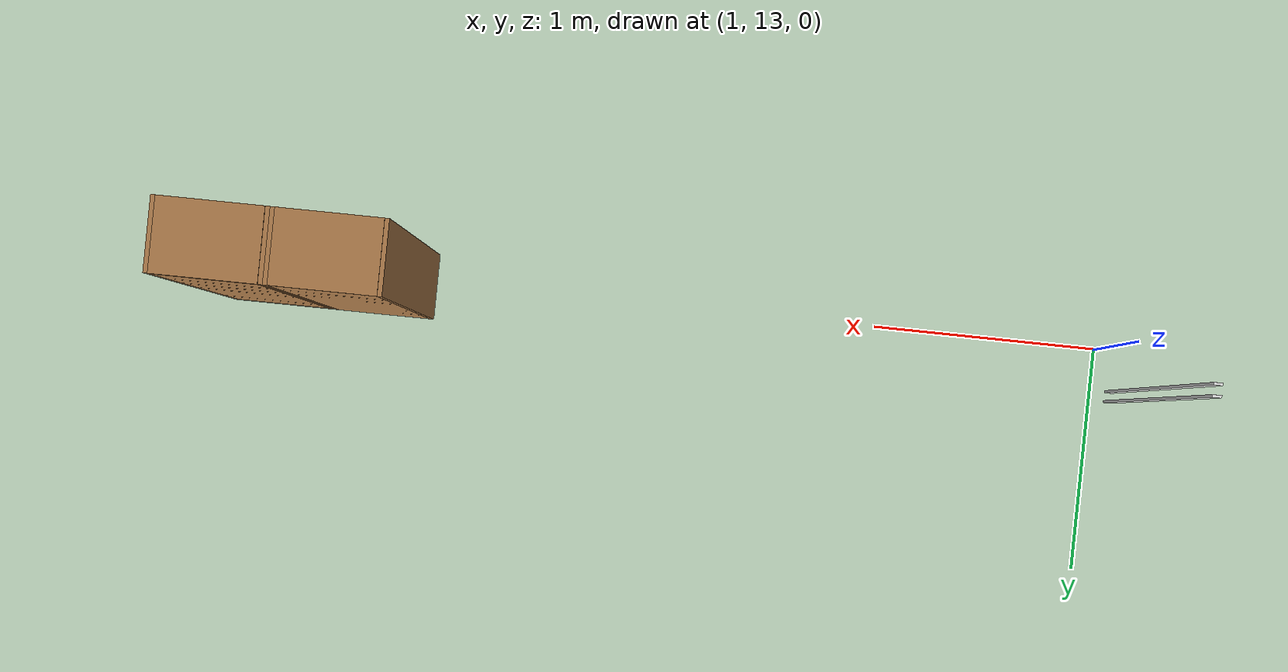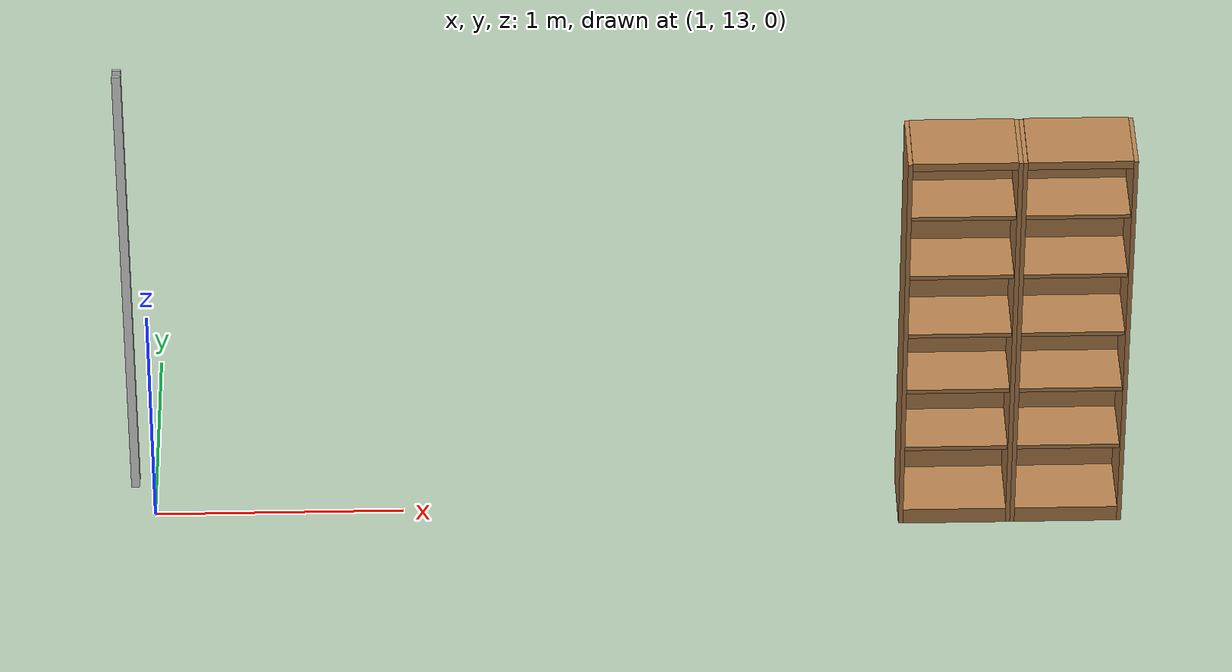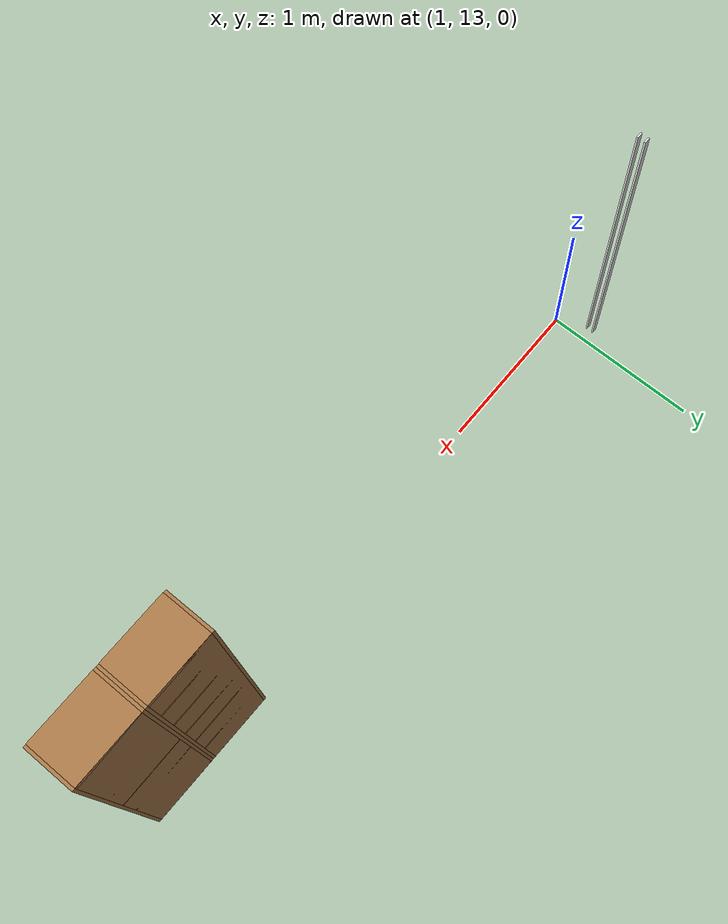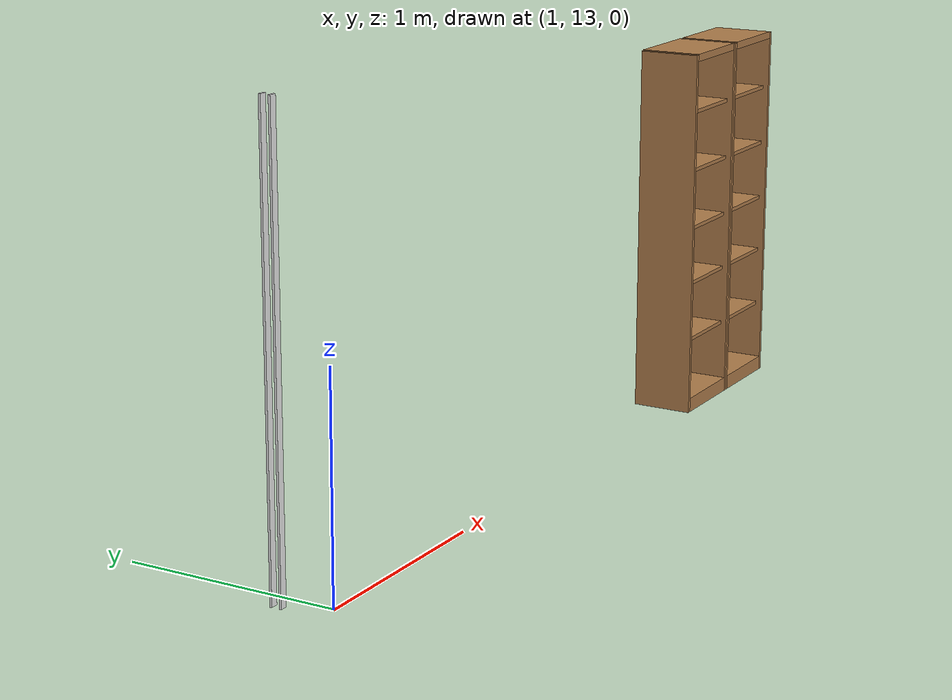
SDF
<sdf version="1.6">
 <world name="apartment">
  <model name="door_stopper_x02y16">
   <link name="door_frame">
    <visual name="stopper">
     <pose>0.0225 0.0175 1.025 0 -0 0</pose>
     <geometry><box><size>0.01 0.035 2.05</size></box></geometry>
     <material>
      <script><uri>model://base_materials/color/scripts</uri><name>hsr_color/white</name></script>
     </material>
    </visual>
    <collision name="collision_frame_1">
     <pose>0.0225 0.0175 1.025 0 -0 0</pose>
     <geometry><box><size>0.01 0.035 2.05</size></box></geometry>
    </collision>
    <visual name="frame_2">
     <pose>-0.0225 0.0175 1.025 0 -0 0</pose>
     <geometry><box><size>0.01 0.035 2.05</size></box></geometry>
     <material>
      <script><uri>model://base_materials/color/scripts</uri><name>hsr_color/white</name></script>
     </material>
    </visual>
    <collision name="collision_frame_2">
     <pose>-0.0225 0.0175 1.025 0 -0 0</pose>
     <geometry><box><size>0.01 0.035 2.05</size></box></geometry>
    </collision>
   </link>
   <static>1</static>
   <pose>0.93 13.2075 0 0 -0 1.5708</pose>
  </model>
  <model name="high_shelf01">
   <link name="link">
    <inertial>
     <mass>5</mass>
     <inertia><ixx>1</ixx><ixy>0</ixy><ixz>0</ixz><iyy>1</iyy><iyz>0</iyz><izz>1</izz></inertia>
    </inertial>
    <visual name="left_board">
     <pose>-0.1475 0.009 0.898 0 -0 0</pose>
     <geometry><box><size>0.295 0.018 1.796</size></box></geometry>
     <material>
      <script>
       <uri>model://base_materials/wood/scripts</uri>
       <uri>model://base_materials/wood/textures</uri>
       <name>base_materials/light_wood</name>
      </script>
     </material>
    </visual>
    <collision name="collision_left_board">
     <pose>-0.1475 0.009 0.898 0 -0 0</pose>
     <geometry><box><size>0.295 0.018 1.796</size></box></geometry>
    </collision>
    <visual name="right_board">
     <pose>-0.1475 0.441 0.898 0 -0 0</pose>
     <geometry><box><size>0.295 0.018 1.796</size></box></geometry>
     <material>
      <script>
       <uri>model://base_materials/wood/scripts</uri>
       <uri>model://base_materials/wood/textures</uri>
       <name>base_materials/light_wood</name>
      </script>
     </material>
    </visual>
    <collision name="collision_right_board">
     <pose>-0.1475 0.441 0.898 0 -0 0</pose>
     <geometry><box><size>0.295 0.018 1.796</size></box></geometry>
    </collision>
    <visual name="top_board">
     <pose>-0.1475 0.225 1.7825 0 -0 0</pose>
     <geometry><box><size>0.295 0.414 0.035</size></box></geometry>
     <material>
      <script>
       <uri>model://base_materials/wood/scripts</uri>
       <uri>model://base_materials/wood/textures</uri>
       <name>base_materials/light_wood</name>
      </script>
     </material>
    </visual>
    <collision name="collision_top_board">
     <pose>-0.1475 0.225 1.7825 0 -0 0</pose>
     <geometry><box><size>0.295 0.414 0.035</size></box></geometry>
    </collision>
    <visual name="1st_shelf">
     <pose>-0.162 0.225 1.51 0 -0 0</pose>
     <geometry><box><size>0.266 0.414 0.018</size></box></geometry>
     <material>
      <script>
       <uri>model://base_materials/wood/scripts</uri>
       <uri>model://base_materials/wood/textures</uri>
       <name>base_materials/light_wood</name>
      </script>
     </material>
    </visual>
    <collision name="collision_1st_shelf">
     <pose>-0.162 0.225 1.51 0 -0 0</pose>
     <geometry><box><size>0.266 0.414 0.018</size></box></geometry>
    </collision>
    <visual name="2nd_shelf">
     <pose>-0.162 0.225 1.22 0 -0 0</pose>
     <geometry><box><size>0.266 0.414 0.018</size></box></geometry>
     <material>
      <script>
       <uri>model://base_materials/wood/scripts</uri>
       <uri>model://base_materials/wood/textures</uri>
       <name>base_materials/light_wood</name>
      </script>
     </material>
    </visual>
    <collision name="collision_2nd_shelf">
     <pose>-0.162 0.225 1.22 0 -0 0</pose>
     <geometry><box><size>0.266 0.414 0.018</size></box></geometry>
    </collision>
    <visual name="3rd_shelf">
     <pose>-0.162 0.225 0.93 0 -0 0</pose>
     <geometry><box><size>0.266 0.414 0.018</size></box></geometry>
     <material>
      <script>
       <uri>model://base_materials/wood/scripts</uri>
       <uri>model://base_materials/wood/textures</uri>
       <name>base_materials/light_wood</name>
      </script>
     </material>
    </visual>
    <collision name="collision_3rd_shelf">
     <pose>-0.162 0.225 0.93 0 -0 0</pose>
     <geometry><box><size>0.266 0.414 0.018</size></box></geometry>
    </collision>
    <visual name="4th_shelf">
     <pose>-0.162 0.225 0.65 0 -0 0</pose>
     <geometry><box><size>0.266 0.414 0.018</size></box></geometry>
     <material>
      <script>
       <uri>model://base_materials/wood/scripts</uri>
       <uri>model://base_materials/wood/textures</uri>
       <name>base_materials/light_wood</name>
      </script>
     </material>
    </visual>
    <collision name="collision_4th_shelf">
     <pose>-0.162 0.225 0.65 0 -0 0</pose>
     <geometry><box><size>0.266 0.414 0.018</size></box></geometry>
    </collision>
    <visual name="5th_shelf">
     <pose>-0.162 0.225 0.36 0 -0 0</pose>
     <geometry><box><size>0.266 0.414 0.018</size></box></geometry>
     <material>
      <script>
       <uri>model://base_materials/wood/scripts</uri>
       <uri>model://base_materials/wood/textures</uri>
       <name>base_materials/light_wood</name>
      </script>
     </material>
    </visual>
    <collision name="collision_5th_shelf">
     <pose>-0.162 0.225 0.36 0 -0 0</pose>
     <geometry><box><size>0.266 0.414 0.018</size></box></geometry>
    </collision>
    <visual name="bottom_board">
     <pose>-0.1475 0.225 0.035 0 -0 0</pose>
     <geometry><box><size>0.295 0.414 0.07</size></box></geometry>
     <material>
      <script>
       <uri>model://base_materials/wood/scripts</uri>
       <uri>model://base_materials/wood/textures</uri>
       <name>base_materials/light_wood</name>
      </script>
     </material>
    </visual>
    <collision name="collision_bottom_board">
     <pose>-0.1475 0.225 0.035 0 -0 0</pose>
     <geometry><box><size>0.295 0.414 0.07</size></box></geometry>
    </collision>
    <visual name="back_board">
     <pose>-0.286 0.225 0.898 0 -0 0</pose>
     <geometry><box><size>0.018 0.414 1.796</size></box></geometry>
     <material>
      <script>
       <uri>model://base_materials/wood/scripts</uri>
       <uri>model://base_materials/wood/textures</uri>
       <name>base_materials/light_wood</name>
      </script>
     </material>
    </visual>
    <collision name="collision_back_board">
     <pose>-0.286 0.225 0.898 0 -0 0</pose>
     <geometry><box><size>0.018 0.414 1.796</size></box></geometry>
    </collision>
    <velocity_decay><linear>0</linear><angular>0</angular></velocity_decay>
   </link>
   <static>1</static>
   <pose>4.45 12.87 0 0 0 -1.5708</pose>
  </model>
  <model name="high_shelf02">
   <link name="link">
    <inertial>
     <mass>5</mass>
     <inertia><ixx>1</ixx><ixy>0</ixy><ixz>0</ixz><iyy>1</iyy><iyz>0</iyz><izz>1</izz></inertia>
    </inertial>
    <visual name="left_board">
     <pose>-0.1475 0.009 0.898 0 -0 0</pose>
     <geometry><box><size>0.295 0.018 1.796</size></box></geometry>
     <material>
      <script>
       <uri>model://base_materials/wood/scripts</uri>
       <uri>model://base_materials/wood/textures</uri>
       <name>base_materials/light_wood</name>
      </script>
     </material>
    </visual>
    <collision name="collision_left_board">
     <pose>-0.1475 0.009 0.898 0 -0 0</pose>
     <geometry><box><size>0.295 0.018 1.796</size></box></geometry>
    </collision>
    <visual name="right_board">
     <pose>-0.1475 0.441 0.898 0 -0 0</pose>
     <geometry><box><size>0.295 0.018 1.796</size></box></geometry>
     <material>
      <script>
       <uri>model://base_materials/wood/scripts</uri>
       <uri>model://base_materials/wood/textures</uri>
       <name>base_materials/light_wood</name>
      </script>
     </material>
    </visual>
    <collision name="collision_right_board">
     <pose>-0.1475 0.441 0.898 0 -0 0</pose>
     <geometry><box><size>0.295 0.018 1.796</size></box></geometry>
    </collision>
    <visual name="top_board">
     <pose>-0.1475 0.225 1.7825 0 -0 0</pose>
     <geometry><box><size>0.295 0.414 0.035</size></box></geometry>
     <material>
      <script>
       <uri>model://base_materials/wood/scripts</uri>
       <uri>model://base_materials/wood/textures</uri>
       <name>base_materials/light_wood</name>
      </script>
     </material>
    </visual>
    <collision name="collision_top_board">
     <pose>-0.1475 0.225 1.7825 0 -0 0</pose>
     <geometry><box><size>0.295 0.414 0.035</size></box></geometry>
    </collision>
    <visual name="1st_shelf">
     <pose>-0.162 0.225 1.51 0 -0 0</pose>
     <geometry><box><size>0.266 0.414 0.018</size></box></geometry>
     <material>
      <script>
       <uri>model://base_materials/wood/scripts</uri>
       <uri>model://base_materials/wood/textures</uri>
       <name>base_materials/light_wood</name>
      </script>
     </material>
    </visual>
    <collision name="collision_1st_shelf">
     <pose>-0.162 0.225 1.51 0 -0 0</pose>
     <geometry><box><size>0.266 0.414 0.018</size></box></geometry>
    </collision>
    <visual name="2nd_shelf">
     <pose>-0.162 0.225 1.22 0 -0 0</pose>
     <geometry><box><size>0.266 0.414 0.018</size></box></geometry>
     <material>
      <script>
       <uri>model://base_materials/wood/scripts</uri>
       <uri>model://base_materials/wood/textures</uri>
       <name>base_materials/light_wood</name>
      </script>
     </material>
    </visual>
    <collision name="collision_2nd_shelf">
     <pose>-0.162 0.225 1.22 0 -0 0</pose>
     <geometry><box><size>0.266 0.414 0.018</size></box></geometry>
    </collision>
    <visual name="3rd_shelf">
     <pose>-0.162 0.225 0.93 0 -0 0</pose>
     <geometry><box><size>0.266 0.414 0.018</size></box></geometry>
     <material>
      <script>
       <uri>model://base_materials/wood/scripts</uri>
       <uri>model://base_materials/wood/textures</uri>
       <name>base_materials/light_wood</name>
      </script>
     </material>
    </visual>
    <collision name="collision_3rd_shelf">
     <pose>-0.162 0.225 0.93 0 -0 0</pose>
     <geometry><box><size>0.266 0.414 0.018</size></box></geometry>
    </collision>
    <visual name="4th_shelf">
     <pose>-0.162 0.225 0.65 0 -0 0</pose>
     <geometry><box><size>0.266 0.414 0.018</size></box></geometry>
     <material>
      <script>
       <uri>model://base_materials/wood/scripts</uri>
       <uri>model://base_materials/wood/textures</uri>
       <name>base_materials/light_wood</name>
      </script>
     </material>
    </visual>
    <collision name="collision_4th_shelf">
     <pose>-0.162 0.225 0.65 0 -0 0</pose>
     <geometry><box><size>0.266 0.414 0.018</size></box></geometry>
    </collision>
    <visual name="5th_shelf">
     <pose>-0.162 0.225 0.36 0 -0 0</pose>
     <geometry><box><size>0.266 0.414 0.018</size></box></geometry>
     <material>
      <script>
       <uri>model://base_materials/wood/scripts</uri>
       <uri>model://base_materials/wood/textures</uri>
       <name>base_materials/light_wood</name>
      </script>
     </material>
    </visual>
    <collision name="collision_5th_shelf">
     <pose>-0.162 0.225 0.36 0 -0 0</pose>
     <geometry><box><size>0.266 0.414 0.018</size></box></geometry>
    </collision>
    <visual name="bottom_board">
     <pose>-0.1475 0.225 0.035 0 -0 0</pose>
     <geometry><box><size>0.295 0.414 0.07</size></box></geometry>
     <material>
      <script>
       <uri>model://base_materials/wood/scripts</uri>
       <uri>model://base_materials/wood/textures</uri>
       <name>base_materials/light_wood</name>
      </script>
     </material>
    </visual>
    <collision name="collision_bottom_board">
     <pose>-0.1475 0.225 0.035 0 -0 0</pose>
     <geometry><box><size>0.295 0.414 0.07</size></box></geometry>
    </collision>
    <visual name="back_board">
     <pose>-0.286 0.225 0.898 0 -0 0</pose>
     <geometry><box><size>0.018 0.414 1.796</size></box></geometry>
     <material>
      <script>
       <uri>model://base_materials/wood/scripts</uri>
       <uri>model://base_materials/wood/textures</uri>
       <name>base_materials/light_wood</name>
      </script>
     </material>
    </visual>
    <collision name="collision_back_board">
     <pose>-0.286 0.225 0.898 0 -0 0</pose>
     <geometry><box><size>0.018 0.414 1.796</size></box></geometry>
    </collision>
    <velocity_decay><linear>0</linear><angular>0</angular></velocity_decay>
   </link>
   <static>1</static>
   <pose>4 12.87 0 0 0 -1.5708</pose>
  </model>
 </world>
</sdf>
